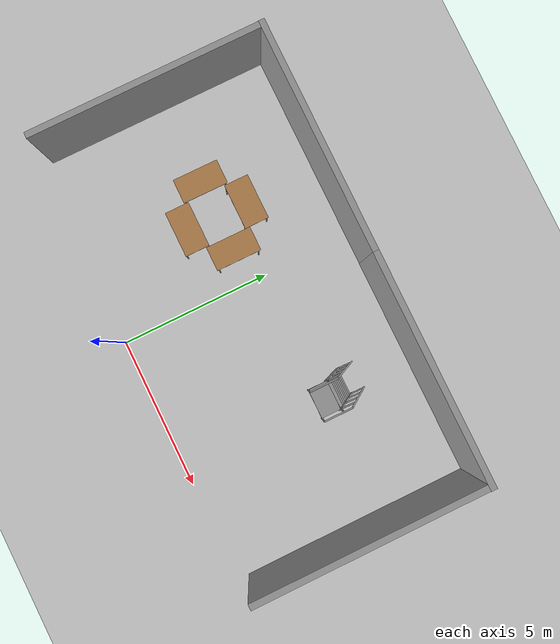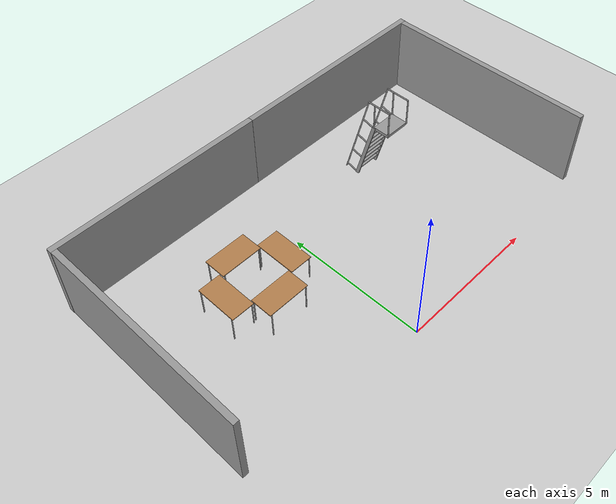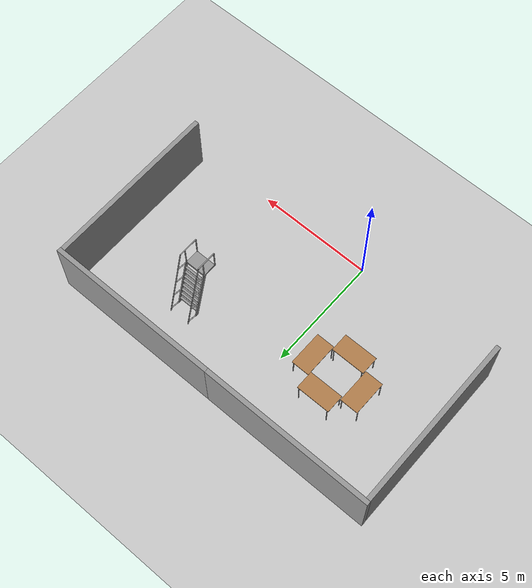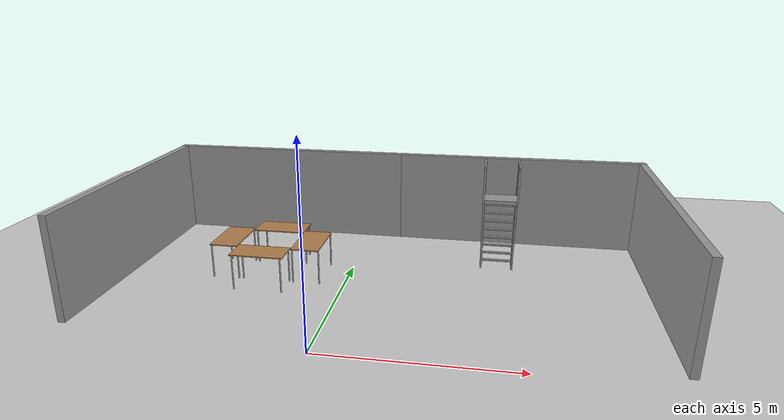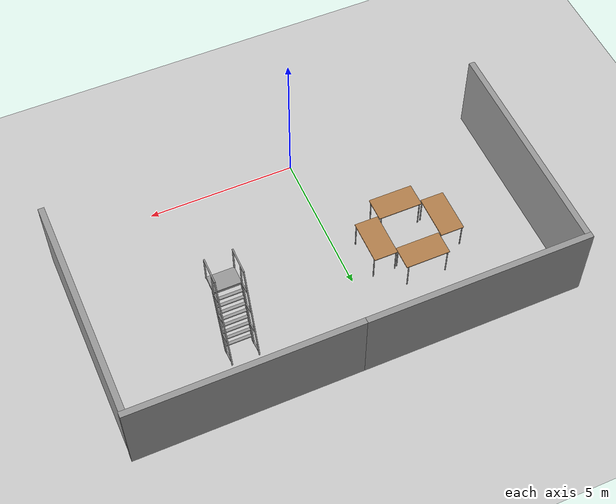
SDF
<sdf version="1.6">
 <world name="default">
  <model name="ground_plane">
   <static>1</static>
   <link name="link">
    <collision name="collision">
     <geometry><plane><normal>0 0 1</normal><size>100 100</size></plane></geometry>
     <surface>
      <contact><collide_bitmask>65535</collide_bitmask></contact>
      <friction><ode><mu>100</mu><mu2>50</mu2></ode></friction>
     </surface>
    </collision>
    <visual name="visual">
     <cast_shadows>0</cast_shadows>
     <geometry><plane><normal>0 0 1</normal><size>100 100</size></plane></geometry>
     <material>
      <script><uri>file://media/materials/scripts/gazebo.material</uri><name>Gazebo/Grey</name></script>
     </material>
    </visual>
   </link>
  </model>
  <model name="grey_wall">
   <static>1</static>
   <link name="link">
    <pose>0 0 1.4 0 -0 0</pose>
    <collision name="collision"><geometry><box><size>7.5 0.2 2.8</size></box></geometry></collision>
    <visual name="visual">
     <cast_shadows>0</cast_shadows>
     <geometry><box><size>7.5 0.2 2.8</size></box></geometry>
     <material>
      <script>
       <uri>model://grey_wall/materials/scripts</uri>
       <uri>model://grey_wall/materials/textures</uri>
       <name>vrc/grey_wall</name>
      </script>
     </material>
    </visual>
   </link>
   <pose>4.73958 7.97604 0 0 -0 0</pose>
  </model>
  <model name="grey_wall_0">
   <static>1</static>
   <link name="link">
    <pose>0 0 1.4 0 -0 0</pose>
    <collision name="collision"><geometry><box><size>7.5 0.2 2.8</size></box></geometry></collision>
    <visual name="visual">
     <cast_shadows>0</cast_shadows>
     <geometry><box><size>7.5 0.2 2.8</size></box></geometry>
     <material>
      <script>
       <uri>model://grey_wall/materials/scripts</uri>
       <uri>model://grey_wall/materials/textures</uri>
       <name>vrc/grey_wall</name>
      </script>
     </material>
    </visual>
   </link>
   <pose>-2.74451 7.97749 0 0 -0 0</pose>
  </model>
  <model name="grey_wall_6">
   <static>1</static>
   <link name="link">
    <pose>0 0 1.4 0 -0 0</pose>
    <collision name="collision"><geometry><box><size>7.5 0.2 2.8</size></box></geometry></collision>
    <visual name="visual">
     <cast_shadows>0</cast_shadows>
     <geometry><box><size>7.5 0.2 2.8</size></box></geometry>
     <material>
      <script>
       <uri>model://grey_wall/materials/scripts</uri>
       <uri>model://grey_wall/materials/textures</uri>
       <name>vrc/grey_wall</name>
      </script>
     </material>
    </visual>
   </link>
   <pose>8.38153 4.12648 0 0 0 -1.56874</pose>
  </model>
  <model name="grey_wall_7">
   <static>1</static>
   <link name="link">
    <pose>0 0 1.4 0 -0 0</pose>
    <collision name="collision"><geometry><box><size>7.5 0.2 2.8</size></box></geometry></collision>
    <visual name="visual">
     <cast_shadows>0</cast_shadows>
     <geometry><box><size>7.5 0.2 2.8</size></box></geometry>
     <material>
      <script>
       <uri>model://grey_wall/materials/scripts</uri>
       <uri>model://grey_wall/materials/textures</uri>
       <name>vrc/grey_wall</name>
      </script>
     </material>
    </visual>
   </link>
   <pose>-6.3923 4.13638 0 0 -0 1.56909</pose>
  </model>
  <model name="table">
   <static>1</static>
   <link name="link">
    <collision name="surface">
     <pose>0 0 1 0 -0 0</pose>
     <geometry><box><size>1.5 0.8 0.03</size></box></geometry>
     <surface><friction><ode><mu>0.6</mu><mu2>0.6</mu2></ode></friction></surface>
    </collision>
    <visual name="visual1">
     <pose>0 0 1 0 -0 0</pose>
     <geometry><box><size>1.5 0.8 0.03</size></box></geometry>
     <material>
      <script><uri>file://media/materials/scripts/gazebo.material</uri><name>Gazebo/Wood</name></script>
     </material>
    </visual>
    <collision name="front_left_leg">
     <pose>0.68 0.38 0.5 0 -0 0</pose>
     <geometry><cylinder><radius>0.02</radius><length>1</length></cylinder></geometry>
    </collision>
    <visual name="front_left_leg">
     <pose>0.68 0.38 0.5 0 -0 0</pose>
     <geometry><cylinder><radius>0.02</radius><length>1</length></cylinder></geometry>
     <material>
      <script><uri>file://media/materials/scripts/gazebo.material</uri><name>Gazebo/Grey</name></script>
     </material>
    </visual>
    <collision name="front_right_leg">
     <pose>0.68 -0.38 0.5 0 -0 0</pose>
     <geometry><cylinder><radius>0.02</radius><length>1</length></cylinder></geometry>
    </collision>
    <visual name="front_right_leg">
     <pose>0.68 -0.38 0.5 0 -0 0</pose>
     <geometry><cylinder><radius>0.02</radius><length>1</length></cylinder></geometry>
     <material>
      <script><uri>file://media/materials/scripts/gazebo.material</uri><name>Gazebo/Grey</name></script>
     </material>
    </visual>
    <collision name="back_right_leg">
     <pose>-0.68 -0.38 0.5 0 -0 0</pose>
     <geometry><cylinder><radius>0.02</radius><length>1</length></cylinder></geometry>
    </collision>
    <visual name="back_right_leg">
     <pose>-0.68 -0.38 0.5 0 -0 0</pose>
     <geometry><cylinder><radius>0.02</radius><length>1</length></cylinder></geometry>
     <material>
      <script><uri>file://media/materials/scripts/gazebo.material</uri><name>Gazebo/Grey</name></script>
     </material>
    </visual>
    <collision name="back_left_leg">
     <pose>-0.68 0.38 0.5 0 -0 0</pose>
     <geometry><cylinder><radius>0.02</radius><length>1</length></cylinder></geometry>
    </collision>
    <visual name="back_left_leg">
     <pose>-0.68 0.38 0.5 0 -0 0</pose>
     <geometry><cylinder><radius>0.02</radius><length>1</length></cylinder></geometry>
     <material>
      <script><uri>file://media/materials/scripts/gazebo.material</uri><name>Gazebo/Grey</name></script>
     </material>
    </visual>
   </link>
   <pose>-2.23396 5.40703 0 0 -0 0</pose>
  </model>
  <model name="table_0">
   <static>1</static>
   <link name="link">
    <collision name="surface">
     <pose>0 0 1 0 -0 0</pose>
     <geometry><box><size>1.5 0.8 0.03</size></box></geometry>
     <surface><friction><ode><mu>0.6</mu><mu2>0.6</mu2></ode></friction></surface>
    </collision>
    <visual name="visual1">
     <pose>0 0 1 0 -0 0</pose>
     <geometry><box><size>1.5 0.8 0.03</size></box></geometry>
     <material>
      <script><uri>file://media/materials/scripts/gazebo.material</uri><name>Gazebo/Wood</name></script>
     </material>
    </visual>
    <collision name="front_left_leg">
     <pose>0.68 0.38 0.5 0 -0 0</pose>
     <geometry><cylinder><radius>0.02</radius><length>1</length></cylinder></geometry>
    </collision>
    <visual name="front_left_leg">
     <pose>0.68 0.38 0.5 0 -0 0</pose>
     <geometry><cylinder><radius>0.02</radius><length>1</length></cylinder></geometry>
     <material>
      <script><uri>file://media/materials/scripts/gazebo.material</uri><name>Gazebo/Grey</name></script>
     </material>
    </visual>
    <collision name="front_right_leg">
     <pose>0.68 -0.38 0.5 0 -0 0</pose>
     <geometry><cylinder><radius>0.02</radius><length>1</length></cylinder></geometry>
    </collision>
    <visual name="front_right_leg">
     <pose>0.68 -0.38 0.5 0 -0 0</pose>
     <geometry><cylinder><radius>0.02</radius><length>1</length></cylinder></geometry>
     <material>
      <script><uri>file://media/materials/scripts/gazebo.material</uri><name>Gazebo/Grey</name></script>
     </material>
    </visual>
    <collision name="back_right_leg">
     <pose>-0.68 -0.38 0.5 0 -0 0</pose>
     <geometry><cylinder><radius>0.02</radius><length>1</length></cylinder></geometry>
    </collision>
    <visual name="back_right_leg">
     <pose>-0.68 -0.38 0.5 0 -0 0</pose>
     <geometry><cylinder><radius>0.02</radius><length>1</length></cylinder></geometry>
     <material>
      <script><uri>file://media/materials/scripts/gazebo.material</uri><name>Gazebo/Grey</name></script>
     </material>
    </visual>
    <collision name="back_left_leg">
     <pose>-0.68 0.38 0.5 0 -0 0</pose>
     <geometry><cylinder><radius>0.02</radius><length>1</length></cylinder></geometry>
    </collision>
    <visual name="back_left_leg">
     <pose>-0.68 0.38 0.5 0 -0 0</pose>
     <geometry><cylinder><radius>0.02</radius><length>1</length></cylinder></geometry>
     <material>
      <script><uri>file://media/materials/scripts/gazebo.material</uri><name>Gazebo/Grey</name></script>
     </material>
    </visual>
   </link>
   <pose>-2.25147 3.37525 0 0 -0 0</pose>
  </model>
  <model name="table_1">
   <static>1</static>
   <link name="link">
    <collision name="surface">
     <pose>0 0 1 0 -0 0</pose>
     <geometry><box><size>1.5 0.8 0.03</size></box></geometry>
     <surface><friction><ode><mu>0.6</mu><mu2>0.6</mu2></ode></friction></surface>
    </collision>
    <visual name="visual1">
     <pose>0 0 1 0 -0 0</pose>
     <geometry><box><size>1.5 0.8 0.03</size></box></geometry>
     <material>
      <script><uri>file://media/materials/scripts/gazebo.material</uri><name>Gazebo/Wood</name></script>
     </material>
    </visual>
    <collision name="front_left_leg">
     <pose>0.68 0.38 0.5 0 -0 0</pose>
     <geometry><cylinder><radius>0.02</radius><length>1</length></cylinder></geometry>
    </collision>
    <visual name="front_left_leg">
     <pose>0.68 0.38 0.5 0 -0 0</pose>
     <geometry><cylinder><radius>0.02</radius><length>1</length></cylinder></geometry>
     <material>
      <script><uri>file://media/materials/scripts/gazebo.material</uri><name>Gazebo/Grey</name></script>
     </material>
    </visual>
    <collision name="front_right_leg">
     <pose>0.68 -0.38 0.5 0 -0 0</pose>
     <geometry><cylinder><radius>0.02</radius><length>1</length></cylinder></geometry>
    </collision>
    <visual name="front_right_leg">
     <pose>0.68 -0.38 0.5 0 -0 0</pose>
     <geometry><cylinder><radius>0.02</radius><length>1</length></cylinder></geometry>
     <material>
      <script><uri>file://media/materials/scripts/gazebo.material</uri><name>Gazebo/Grey</name></script>
     </material>
    </visual>
    <collision name="back_right_leg">
     <pose>-0.68 -0.38 0.5 0 -0 0</pose>
     <geometry><cylinder><radius>0.02</radius><length>1</length></cylinder></geometry>
    </collision>
    <visual name="back_right_leg">
     <pose>-0.68 -0.38 0.5 0 -0 0</pose>
     <geometry><cylinder><radius>0.02</radius><length>1</length></cylinder></geometry>
     <material>
      <script><uri>file://media/materials/scripts/gazebo.material</uri><name>Gazebo/Grey</name></script>
     </material>
    </visual>
    <collision name="back_left_leg">
     <pose>-0.68 0.38 0.5 0 -0 0</pose>
     <geometry><cylinder><radius>0.02</radius><length>1</length></cylinder></geometry>
    </collision>
    <visual name="back_left_leg">
     <pose>-0.68 0.38 0.5 0 -0 0</pose>
     <geometry><cylinder><radius>0.02</radius><length>1</length></cylinder></geometry>
     <material>
      <script><uri>file://media/materials/scripts/gazebo.material</uri><name>Gazebo/Grey</name></script>
     </material>
    </visual>
   </link>
   <pose>-3.425 4.39114 0 0 -0 1.56536</pose>
  </model>
  <model name="table_2">
   <static>1</static>
   <link name="link">
    <collision name="surface">
     <pose>0 0 1 0 -0 0</pose>
     <geometry><box><size>1.5 0.8 0.03</size></box></geometry>
     <surface><friction><ode><mu>0.6</mu><mu2>0.6</mu2></ode></friction></surface>
    </collision>
    <visual name="visual1">
     <pose>0 0 1 0 -0 0</pose>
     <geometry><box><size>1.5 0.8 0.03</size></box></geometry>
     <material>
      <script><uri>file://media/materials/scripts/gazebo.material</uri><name>Gazebo/Wood</name></script>
     </material>
    </visual>
    <collision name="front_left_leg">
     <pose>0.68 0.38 0.5 0 -0 0</pose>
     <geometry><cylinder><radius>0.02</radius><length>1</length></cylinder></geometry>
    </collision>
    <visual name="front_left_leg">
     <pose>0.68 0.38 0.5 0 -0 0</pose>
     <geometry><cylinder><radius>0.02</radius><length>1</length></cylinder></geometry>
     <material>
      <script><uri>file://media/materials/scripts/gazebo.material</uri><name>Gazebo/Grey</name></script>
     </material>
    </visual>
    <collision name="front_right_leg">
     <pose>0.68 -0.38 0.5 0 -0 0</pose>
     <geometry><cylinder><radius>0.02</radius><length>1</length></cylinder></geometry>
    </collision>
    <visual name="front_right_leg">
     <pose>0.68 -0.38 0.5 0 -0 0</pose>
     <geometry><cylinder><radius>0.02</radius><length>1</length></cylinder></geometry>
     <material>
      <script><uri>file://media/materials/scripts/gazebo.material</uri><name>Gazebo/Grey</name></script>
     </material>
    </visual>
    <collision name="back_right_leg">
     <pose>-0.68 -0.38 0.5 0 -0 0</pose>
     <geometry><cylinder><radius>0.02</radius><length>1</length></cylinder></geometry>
    </collision>
    <visual name="back_right_leg">
     <pose>-0.68 -0.38 0.5 0 -0 0</pose>
     <geometry><cylinder><radius>0.02</radius><length>1</length></cylinder></geometry>
     <material>
      <script><uri>file://media/materials/scripts/gazebo.material</uri><name>Gazebo/Grey</name></script>
     </material>
    </visual>
    <collision name="back_left_leg">
     <pose>-0.68 0.38 0.5 0 -0 0</pose>
     <geometry><cylinder><radius>0.02</radius><length>1</length></cylinder></geometry>
    </collision>
    <visual name="back_left_leg">
     <pose>-0.68 0.38 0.5 0 -0 0</pose>
     <geometry><cylinder><radius>0.02</radius><length>1</length></cylinder></geometry>
     <material>
      <script><uri>file://media/materials/scripts/gazebo.material</uri><name>Gazebo/Grey</name></script>
     </material>
    </visual>
   </link>
   <pose>-1.07794 4.40866 0 0 0 -1.57334</pose>
  </model>
  <model name="ladder_75deg_2rails_0">
   <static>1</static>
   <link name="step0">
    <pose>0 0.071453 0.266667 0 -0 0</pose>
    <inertial>
     <mass>9.75482</mass>
     <inertia>
      <ixx>0.00957124</ixx>
      <iyy>0.65963</iyy>
      <izz>0.666842</izz>
      <ixy>0</ixy>
      <ixz>0</ixz>
      <iyz>0</iyz>
     </inertia>
    </inertial>
    <collision name="collision"><geometry><box><size>0.9 0.1016 0.0381</size></box></geometry></collision>
    <visual name="visual">
     <geometry><box><size>0.9 0.1016 0.0381</size></box></geometry>
     <material>
      <script><uri>file://media/materials/scripts/gazebo.material</uri><name>Gazebo/Grey</name></script>
     </material>
    </visual>
   </link>
   <link name="step1">
    <pose>0 0.142906 0.533333 0 -0 0</pose>
    <inertial>
     <mass>9.75482</mass>
     <inertia>
      <ixx>0.00957124</ixx>
      <iyy>0.65963</iyy>
      <izz>0.666842</izz>
      <ixy>0</ixy>
      <ixz>0</ixz>
      <iyz>0</iyz>
     </inertia>
    </inertial>
    <collision name="collision"><geometry><box><size>0.9 0.1016 0.0381</size></box></geometry></collision>
    <visual name="visual">
     <geometry><box><size>0.9 0.1016 0.0381</size></box></geometry>
     <material>
      <script><uri>file://media/materials/scripts/gazebo.material</uri><name>Gazebo/Grey</name></script>
     </material>
    </visual>
   </link>
   <link name="step2">
    <pose>0 0.214359 0.8 0 -0 0</pose>
    <inertial>
     <mass>9.75482</mass>
     <inertia>
      <ixx>0.00957124</ixx>
      <iyy>0.65963</iyy>
      <izz>0.666842</izz>
      <ixy>0</ixy>
      <ixz>0</ixz>
      <iyz>0</iyz>
     </inertia>
    </inertial>
    <collision name="collision"><geometry><box><size>0.9 0.1016 0.0381</size></box></geometry></collision>
    <visual name="visual">
     <geometry><box><size>0.9 0.1016 0.0381</size></box></geometry>
     <material>
      <script><uri>file://media/materials/scripts/gazebo.material</uri><name>Gazebo/Grey</name></script>
     </material>
    </visual>
   </link>
   <link name="step3">
    <pose>0 0.285812 1.06667 0 -0 0</pose>
    <inertial>
     <mass>9.75482</mass>
     <inertia>
      <ixx>0.00957124</ixx>
      <iyy>0.65963</iyy>
      <izz>0.666842</izz>
      <ixy>0</ixy>
      <ixz>0</ixz>
      <iyz>0</iyz>
     </inertia>
    </inertial>
    <collision name="collision"><geometry><box><size>0.9 0.1016 0.0381</size></box></geometry></collision>
    <visual name="visual">
     <geometry><box><size>0.9 0.1016 0.0381</size></box></geometry>
     <material>
      <script><uri>file://media/materials/scripts/gazebo.material</uri><name>Gazebo/Grey</name></script>
     </material>
    </visual>
   </link>
   <link name="step4">
    <pose>0 0.357266 1.33333 0 -0 0</pose>
    <inertial>
     <mass>9.75482</mass>
     <inertia>
      <ixx>0.00957124</ixx>
      <iyy>0.65963</iyy>
      <izz>0.666842</izz>
      <ixy>0</ixy>
      <ixz>0</ixz>
      <iyz>0</iyz>
     </inertia>
    </inertial>
    <collision name="collision"><geometry><box><size>0.9 0.1016 0.0381</size></box></geometry></collision>
    <visual name="visual">
     <geometry><box><size>0.9 0.1016 0.0381</size></box></geometry>
     <material>
      <script><uri>file://media/materials/scripts/gazebo.material</uri><name>Gazebo/Grey</name></script>
     </material>
    </visual>
   </link>
   <link name="step5">
    <pose>0 0.428719 1.6 0 -0 0</pose>
    <inertial>
     <mass>9.75482</mass>
     <inertia>
      <ixx>0.00957124</ixx>
      <iyy>0.65963</iyy>
      <izz>0.666842</izz>
      <ixy>0</ixy>
      <ixz>0</ixz>
      <iyz>0</iyz>
     </inertia>
    </inertial>
    <collision name="collision"><geometry><box><size>0.9 0.1016 0.0381</size></box></geometry></collision>
    <visual name="visual">
     <geometry><box><size>0.9 0.1016 0.0381</size></box></geometry>
     <material>
      <script><uri>file://media/materials/scripts/gazebo.material</uri><name>Gazebo/Grey</name></script>
     </material>
    </visual>
   </link>
   <link name="step6">
    <pose>0 0.500172 1.86667 0 -0 0</pose>
    <inertial>
     <mass>9.75482</mass>
     <inertia>
      <ixx>0.00957124</ixx>
      <iyy>0.65963</iyy>
      <izz>0.666842</izz>
      <ixy>0</ixy>
      <ixz>0</ixz>
      <iyz>0</iyz>
     </inertia>
    </inertial>
    <collision name="collision"><geometry><box><size>0.9 0.1016 0.0381</size></box></geometry></collision>
    <visual name="visual">
     <geometry><box><size>0.9 0.1016 0.0381</size></box></geometry>
     <material>
      <script><uri>file://media/materials/scripts/gazebo.material</uri><name>Gazebo/Grey</name></script>
     </material>
    </visual>
   </link>
   <link name="step7">
    <pose>0 0.571625 2.13333 0 -0 0</pose>
    <inertial>
     <mass>9.75482</mass>
     <inertia>
      <ixx>0.00957124</ixx>
      <iyy>0.65963</iyy>
      <izz>0.666842</izz>
      <ixy>0</ixy>
      <ixz>0</ixz>
      <iyz>0</iyz>
     </inertia>
    </inertial>
    <collision name="collision"><geometry><box><size>0.9 0.1016 0.0381</size></box></geometry></collision>
    <visual name="visual">
     <geometry><box><size>0.9 0.1016 0.0381</size></box></geometry>
     <material>
      <script><uri>file://media/materials/scripts/gazebo.material</uri><name>Gazebo/Grey</name></script>
     </material>
    </visual>
   </link>
   <link name="landing">
    <pose>0 0.943078 2.4 0 -0 0</pose>
    <inertial>
     <mass>57.6072</mass>
     <inertia><ixx>1.73518</ixx><iyy>3.89545</iyy><izz>5.6167</izz><ixy>0</ixy><ixz>0</ixz><iyz>0</iyz></inertia>
    </inertial>
    <collision name="collision"><geometry><box><size>0.9 0.6 0.1016</size></box></geometry></collision>
    <visual name="visual">
     <geometry><box><size>0.9 0.6 0.1016</size></box></geometry>
     <material>
      <script><uri>file://media/materials/scripts/gazebo.material</uri><name>Gazebo/Grey</name></script>
     </material>
    </visual>
   </link>
   <link name="left_side_wall">
    <pose>-0.45 0.321539 1.2 1.309 -0 0</pose>
    <collision name="collision"><geometry><box><size>0.0508 2.56466 0.13</size></box></geometry></collision>
    <visual name="visual">
     <geometry><box><size>0.0508 2.56466 0.13</size></box></geometry>
     <material>
      <script><uri>file://media/materials/scripts/gazebo.material</uri><name>Gazebo/Grey</name></script>
     </material>
    </visual>
   </link>
   <link name="right_side_wall">
    <pose>0.45 0.321539 1.2 1.309 -0 0</pose>
    <collision name="collision"><geometry><box><size>0.0508 2.56466 0.13</size></box></geometry></collision>
    <visual name="visual">
     <geometry><box><size>0.0508 2.56466 0.13</size></box></geometry>
     <material>
      <script><uri>file://media/materials/scripts/gazebo.material</uri><name>Gazebo/Grey</name></script>
     </material>
    </visual>
   </link>
   <link name="left_railing_long">
    <pose>-0.45 -0.053461 1.66651 -0.261799 0 0</pose>
    <collision name="collision">
     <geometry><cylinder><radius>0.02413</radius><length>3.51529</length></cylinder></geometry>
    </collision>
    <visual name="visual">
     <geometry><cylinder><radius>0.02413</radius><length>3.51529</length></cylinder></geometry>
     <material>
      <script><uri>file://media/materials/scripts/gazebo.material</uri><name>Gazebo/Grey</name></script>
     </material>
    </visual>
   </link>
   <link name="left_railing_upright0">
    <pose>-0.45 -0.210089 0.056293 1.309 -0 0</pose>
    <collision name="collision">
     <geometry><cylinder><radius>0.02413</radius><length>0.482963</length></cylinder></geometry>
    </collision>
    <visual name="visual">
     <geometry><cylinder><radius>0.02413</radius><length>0.482963</length></cylinder></geometry>
     <material>
      <script><uri>file://media/materials/scripts/gazebo.material</uri><name>Gazebo/Grey</name></script>
     </material>
    </visual>
   </link>
   <link name="left_railing_upright1">
    <pose>-0.45 0.00427 0.856293 1.309 -0 0</pose>
    <collision name="collision">
     <geometry><cylinder><radius>0.02413</radius><length>0.482963</length></cylinder></geometry>
    </collision>
    <visual name="visual">
     <geometry><cylinder><radius>0.02413</radius><length>0.482963</length></cylinder></geometry>
     <material>
      <script><uri>file://media/materials/scripts/gazebo.material</uri><name>Gazebo/Grey</name></script>
     </material>
    </visual>
   </link>
   <link name="left_railing_upright2">
    <pose>-0.45 0.21863 1.65629 1.309 -0 0</pose>
    <collision name="collision">
     <geometry><cylinder><radius>0.02413</radius><length>0.482963</length></cylinder></geometry>
    </collision>
    <visual name="visual">
     <geometry><cylinder><radius>0.02413</radius><length>0.482963</length></cylinder></geometry>
     <material>
      <script><uri>file://media/materials/scripts/gazebo.material</uri><name>Gazebo/Grey</name></script>
     </material>
    </visual>
   </link>
   <link name="left_railing_upright3">
    <pose>-0.45 0.432989 2.45629 1.309 -0 0</pose>
    <collision name="collision">
     <geometry><cylinder><radius>0.02413</radius><length>0.482963</length></cylinder></geometry>
    </collision>
    <visual name="visual">
     <geometry><cylinder><radius>0.02413</radius><length>0.482963</length></cylinder></geometry>
     <material>
      <script><uri>file://media/materials/scripts/gazebo.material</uri><name>Gazebo/Grey</name></script>
     </material>
    </visual>
   </link>
   <link name="left_railing_landing_top">
    <pose>-0.45 0.818078 3.35714 1.5708 -0 0</pose>
    <collision name="collision">
     <geometry><cylinder><radius>0.02413</radius><length>0.87413</length></cylinder></geometry>
    </collision>
    <visual name="visual">
     <geometry><cylinder><radius>0.02413</radius><length>0.87413</length></cylinder></geometry>
     <material>
      <script><uri>file://media/materials/scripts/gazebo.material</uri><name>Gazebo/Grey</name></script>
     </material>
    </visual>
   </link>
   <link name="left_railing_landing_upright_0">
    <pose>-0.45 0.643078 2.86651 0 -0 0</pose>
    <collision name="collision">
     <geometry><cylinder><radius>0.02413</radius><length>0.933013</length></cylinder></geometry>
    </collision>
    <visual name="visual">
     <geometry><cylinder><radius>0.02413</radius><length>0.933013</length></cylinder></geometry>
     <material>
      <script><uri>file://media/materials/scripts/gazebo.material</uri><name>Gazebo/Grey</name></script>
     </material>
    </visual>
   </link>
   <link name="left_railing_landing_upright_1">
    <pose>-0.45 1.24308 2.86651 0 -0 0</pose>
    <collision name="collision">
     <geometry><cylinder><radius>0.02413</radius><length>0.933013</length></cylinder></geometry>
    </collision>
    <visual name="visual">
     <geometry><cylinder><radius>0.02413</radius><length>0.933013</length></cylinder></geometry>
     <material>
      <script><uri>file://media/materials/scripts/gazebo.material</uri><name>Gazebo/Grey</name></script>
     </material>
    </visual>
   </link>
   <link name="right_railing_long">
    <pose>0.45 -0.053461 1.66651 -0.261799 0 0</pose>
    <collision name="collision">
     <geometry><cylinder><radius>0.02413</radius><length>3.51529</length></cylinder></geometry>
    </collision>
    <visual name="visual">
     <geometry><cylinder><radius>0.02413</radius><length>3.51529</length></cylinder></geometry>
     <material>
      <script><uri>file://media/materials/scripts/gazebo.material</uri><name>Gazebo/Grey</name></script>
     </material>
    </visual>
   </link>
   <link name="right_railing_upright0">
    <pose>0.45 -0.210089 0.056293 1.309 -0 0</pose>
    <collision name="collision">
     <geometry><cylinder><radius>0.02413</radius><length>0.482963</length></cylinder></geometry>
    </collision>
    <visual name="visual">
     <geometry><cylinder><radius>0.02413</radius><length>0.482963</length></cylinder></geometry>
     <material>
      <script><uri>file://media/materials/scripts/gazebo.material</uri><name>Gazebo/Grey</name></script>
     </material>
    </visual>
   </link>
   <link name="right_railing_upright1">
    <pose>0.45 0.00427 0.856293 1.309 -0 0</pose>
    <collision name="collision">
     <geometry><cylinder><radius>0.02413</radius><length>0.482963</length></cylinder></geometry>
    </collision>
    <visual name="visual">
     <geometry><cylinder><radius>0.02413</radius><length>0.482963</length></cylinder></geometry>
     <material>
      <script><uri>file://media/materials/scripts/gazebo.material</uri><name>Gazebo/Grey</name></script>
     </material>
    </visual>
   </link>
   <link name="right_railing_upright2">
    <pose>0.45 0.21863 1.65629 1.309 -0 0</pose>
    <collision name="collision">
     <geometry><cylinder><radius>0.02413</radius><length>0.482963</length></cylinder></geometry>
    </collision>
    <visual name="visual">
     <geometry><cylinder><radius>0.02413</radius><length>0.482963</length></cylinder></geometry>
     <material>
      <script><uri>file://media/materials/scripts/gazebo.material</uri><name>Gazebo/Grey</name></script>
     </material>
    </visual>
   </link>
   <link name="right_railing_upright3">
    <pose>0.45 0.432989 2.45629 1.309 -0 0</pose>
    <collision name="collision">
     <geometry><cylinder><radius>0.02413</radius><length>0.482963</length></cylinder></geometry>
    </collision>
    <visual name="visual">
     <geometry><cylinder><radius>0.02413</radius><length>0.482963</length></cylinder></geometry>
     <material>
      <script><uri>file://media/materials/scripts/gazebo.material</uri><name>Gazebo/Grey</name></script>
     </material>
    </visual>
   </link>
   <link name="right_railing_landing_top">
    <pose>0.45 0.818078 3.35714 1.5708 -0 0</pose>
    <collision name="collision">
     <geometry><cylinder><radius>0.02413</radius><length>0.87413</length></cylinder></geometry>
    </collision>
    <visual name="visual">
     <geometry><cylinder><radius>0.02413</radius><length>0.87413</length></cylinder></geometry>
     <material>
      <script><uri>file://media/materials/scripts/gazebo.material</uri><name>Gazebo/Grey</name></script>
     </material>
    </visual>
   </link>
   <link name="right_railing_landing_upright_0">
    <pose>0.45 0.643078 2.86651 0 -0 0</pose>
    <collision name="collision">
     <geometry><cylinder><radius>0.02413</radius><length>0.933013</length></cylinder></geometry>
    </collision>
    <visual name="visual">
     <geometry><cylinder><radius>0.02413</radius><length>0.933013</length></cylinder></geometry>
     <material>
      <script><uri>file://media/materials/scripts/gazebo.material</uri><name>Gazebo/Grey</name></script>
     </material>
    </visual>
   </link>
   <link name="right_railing_landing_upright_1">
    <pose>0.45 1.24308 2.86651 0 -0 0</pose>
    <collision name="collision">
     <geometry><cylinder><radius>0.02413</radius><length>0.933013</length></cylinder></geometry>
    </collision>
    <visual name="visual">
     <geometry><cylinder><radius>0.02413</radius><length>0.933013</length></cylinder></geometry>
     <material>
      <script><uri>file://media/materials/scripts/gazebo.material</uri><name>Gazebo/Grey</name></script>
     </material>
    </visual>
   </link>
   <pose>4.16747 5.75659 0 0 0 -3.14069</pose>
  </model>
 </world>
</sdf>
